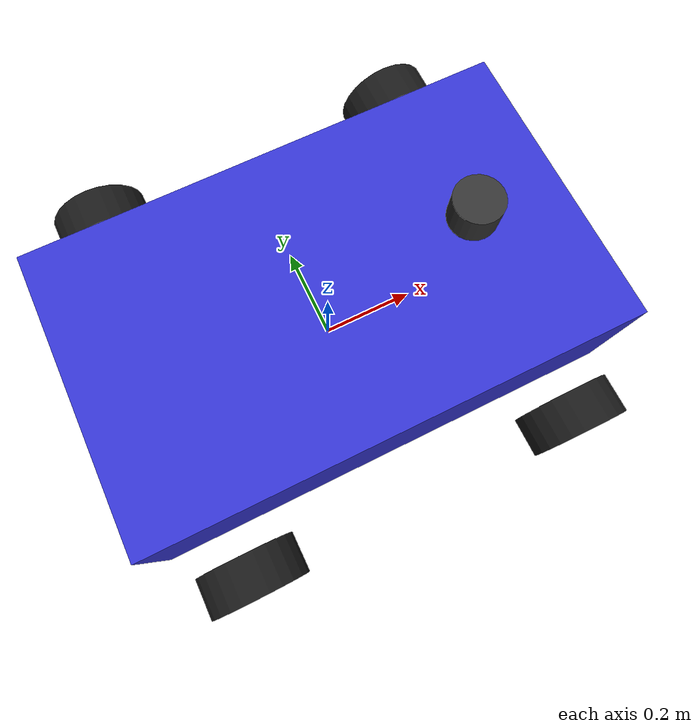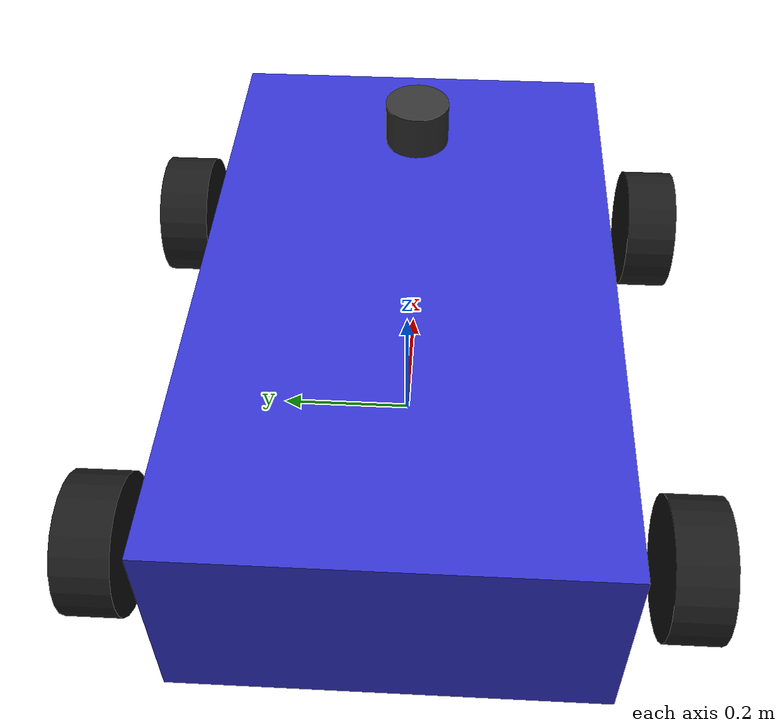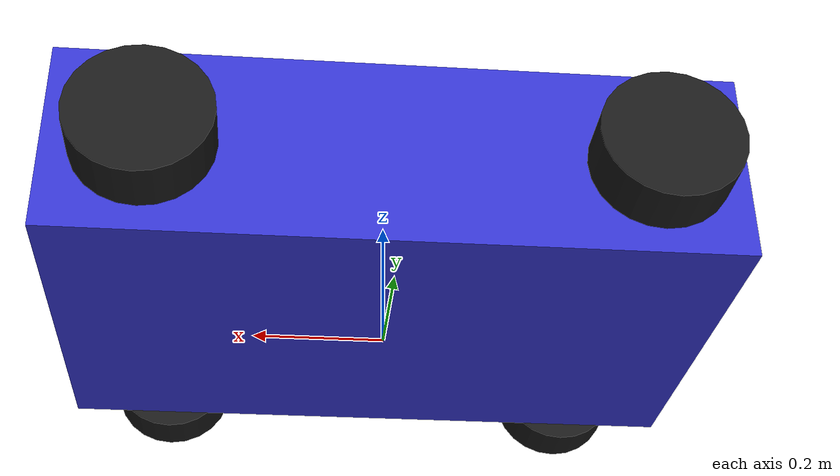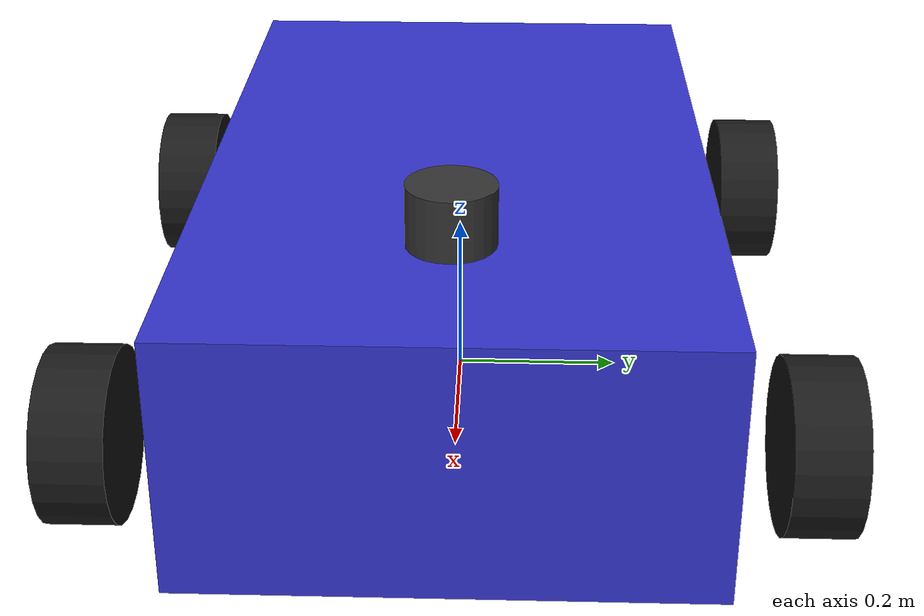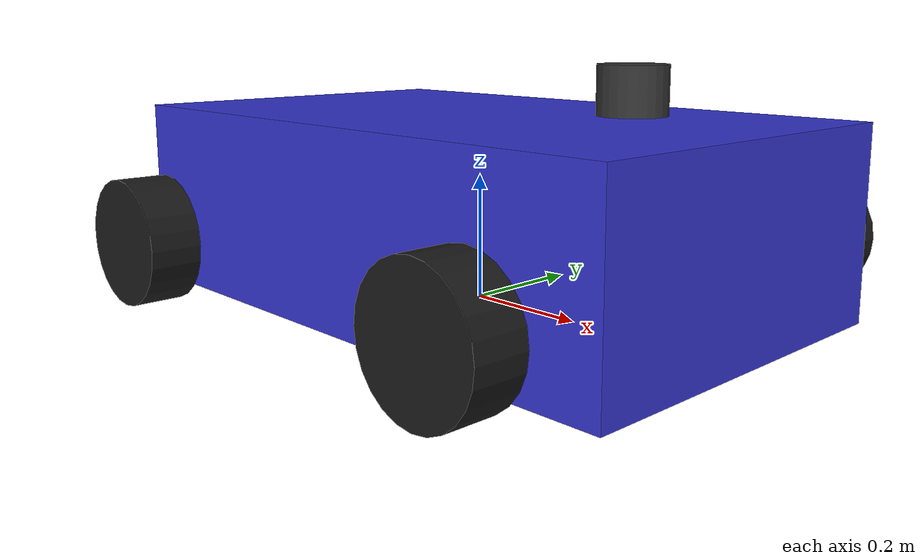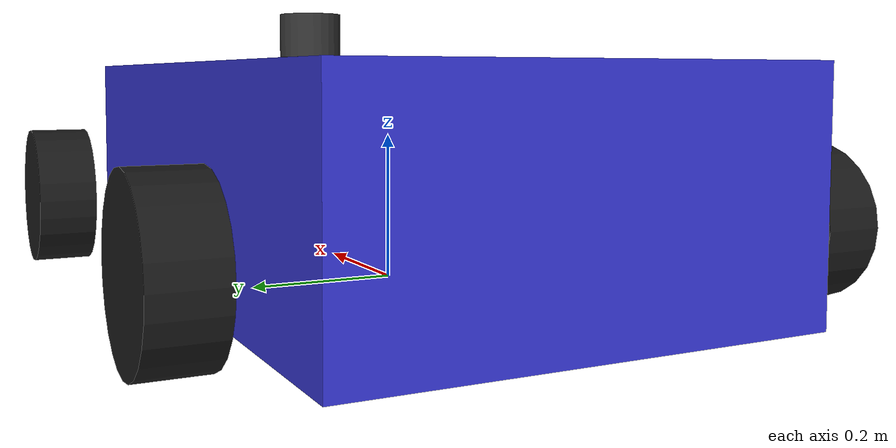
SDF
<?xml version="1.0" ?>
<sdf version="1.6">
  <model name="inspection_robot">

    <!-- Base link (chassis) -->
    <link name="base_link">
      <pose>0 0 0.15 0 0 0</pose>
      <inertial>
        <mass>20.0</mass>
        <inertia>
          <ixx>0.4</ixx>
          <ixy>0</ixy>
          <ixz>0</ixz>
          <iyy>1.0</iyy>
          <iyz>0</iyz>
          <izz>1.2</izz>
        </inertia>
      </inertial>

      <!-- Chassis visual -->
      <visual name="chassis_visual">
        <geometry>
          <box>
            <size>1.0 0.6 0.3</size>
          </box>
        </geometry>
        <material>
          <ambient>0.2 0.2 0.8 1.0</ambient>
          <diffuse>0.2 0.2 0.8 1.0</diffuse>
          <specular>0.5 0.5 0.5 1.0</specular>
        </material>
      </visual>

      <!-- Chassis collision -->
      <collision name="chassis_collision">
        <geometry>
          <box>
            <size>1.0 0.6 0.3</size>
          </box>
        </geometry>
      </collision>

      <!-- GPS Sensor -->
      <sensor name="gps_sensor" type="navsat">
        <pose>0 0 0.2 0 0 0</pose>
        <always_on>true</always_on>
        <update_rate>10</update_rate>
        <topic>/mavros/global_position/global</topic>
        <navsat>
          <position_sensing>
            <horizontal>
              <noise type="gaussian">
                <mean>0.0</mean>
                <stddev>2e-4</stddev>
              </noise>
            </horizontal>
            <vertical>
              <noise type="gaussian">
                <mean>0.0</mean>
                <stddev>2e-4</stddev>
              </noise>
            </vertical>
          </position_sensing>
          <velocity_sensing>
            <horizontal>
              <noise type="gaussian">
                <mean>0.0</mean>
                <stddev>0.1</stddev>
              </noise>
            </horizontal>
            <vertical>
              <noise type="gaussian">
                <mean>0.0</mean>
                <stddev>0.1</stddev>
              </noise>
            </vertical>
          </velocity_sensing>
        </navsat>
      </sensor>

      <!-- IMU Sensor (for heading/orientation) -->
      <sensor name="imu_sensor" type="imu">
        <pose>0 0 0.2 0 0 0</pose>
        <always_on>true</always_on>
        <update_rate>100</update_rate>
        <topic>/imu/data</topic>
        <imu>
          <angular_velocity>
            <x>
              <noise type="gaussian">
                <mean>0.0</mean>
                <stddev>2e-4</stddev>
              </noise>
            </x>
            <y>
              <noise type="gaussian">
                <mean>0.0</mean>
                <stddev>2e-4</stddev>
              </noise>
            </y>
            <z>
              <noise type="gaussian">
                <mean>0.0</mean>
                <stddev>2e-4</stddev>
              </noise>
            </z>
          </angular_velocity>
          <linear_acceleration>
            <x>
              <noise type="gaussian">
                <mean>0.0</mean>
                <stddev>1.7e-2</stddev>
              </noise>
            </x>
            <y>
              <noise type="gaussian">
                <mean>0.0</mean>
                <stddev>1.7e-2</stddev>
              </noise>
            </y>
            <z>
              <noise type="gaussian">
                <mean>0.0</mean>
                <stddev>1.7e-2</stddev>
              </noise>
            </z>
          </linear_acceleration>
        </imu>
      </sensor>
    </link>

    <!-- LiDAR Link -->
    <link name="lidar_link">
      <pose>0.3 0 0.35 0 0 0</pose>
      <inertial>
        <mass>0.5</mass>
        <inertia>
          <ixx>0.001</ixx>
          <ixy>0</ixy>
          <ixz>0</ixz>
          <iyy>0.001</iyy>
          <iyz>0</iyz>
          <izz>0.001</izz>
        </inertia>
      </inertial>

      <!-- LiDAR Visual -->
      <visual name="lidar_visual">
        <geometry>
          <cylinder>
            <radius>0.05</radius>
            <length>0.07</length>
          </cylinder>
        </geometry>
        <material>
          <ambient>0.1 0.1 0.1 1.0</ambient>
          <diffuse>0.2 0.2 0.2 1.0</diffuse>
        </material>
      </visual>

      <!-- LiDAR Sensor - 3D point cloud -->
      <sensor name="velodyne" type="gpu_lidar">
        <pose>0 0 0.035 0 0 0</pose>
        <topic>lidar</topic>
        <always_on>1</always_on>
        <update_rate>10</update_rate>
        <visualize>true</visualize>
        <lidar>
          <scan>
            <horizontal>
              <samples>640</samples>
              <resolution>1</resolution>
              <min_angle>-3.14159</min_angle>
              <max_angle>3.14159</max_angle>
            </horizontal>
            <vertical>
              <samples>16</samples>
              <resolution>1</resolution>
              <min_angle>-0.261799</min_angle>
              <max_angle>0.261799</max_angle>
            </vertical>
          </scan>
          <range>
            <min>0.1</min>
            <max>30.0</max>
            <resolution>0.01</resolution>
          </range>
          <noise>
            <type>gaussian</type>
            <mean>0.0</mean>
            <stddev>0.01</stddev>
          </noise>
        </lidar>
        <ignition_frame_id>velodyne</ignition_frame_id>
      </sensor>
    </link>

    <!-- LiDAR Joint -->
    <joint name="lidar_joint" type="fixed">
      <parent>base_link</parent>
      <child>lidar_link</child>
    </joint>

    <!-- Front Left Wheel -->
    <link name="front_left_wheel">
      <pose>0.35 0.4 0.1 -1.5707 0 0</pose>
      <inertial>
        <mass>2.0</mass>
        <inertia>
          <ixx>0.01</ixx>
          <ixy>0</ixy>
          <ixz>0</ixz>
          <iyy>0.01</iyy>
          <iyz>0</iyz>
          <izz>0.01</izz>
        </inertia>
      </inertial>
      <visual name="visual">
        <geometry>
          <cylinder>
            <radius>0.1</radius>
            <length>0.08</length>
          </cylinder>
        </geometry>
        <material>
          <ambient>0.1 0.1 0.1 1.0</ambient>
          <diffuse>0.1 0.1 0.1 1.0</diffuse>
        </material>
      </visual>
      <collision name="collision">
        <geometry>
          <cylinder>
            <radius>0.1</radius>
            <length>0.08</length>
          </cylinder>
        </geometry>
        <surface>
          <friction>
            <ode>
              <mu>1.0</mu>
              <mu2>1.0</mu2>
            </ode>
          </friction>
        </surface>
      </collision>
    </link>

    <!-- Front Right Wheel -->
    <link name="front_right_wheel">
      <pose>0.35 -0.4 0.1 -1.5707 0 0</pose>
      <inertial>
        <mass>2.0</mass>
        <inertia>
          <ixx>0.01</ixx>
          <ixy>0</ixy>
          <ixz>0</ixz>
          <iyy>0.01</iyy>
          <iyz>0</iyz>
          <izz>0.01</izz>
        </inertia>
      </inertial>
      <visual name="visual">
        <geometry>
          <cylinder>
            <radius>0.1</radius>
            <length>0.08</length>
          </cylinder>
        </geometry>
        <material>
          <ambient>0.1 0.1 0.1 1.0</ambient>
          <diffuse>0.1 0.1 0.1 1.0</diffuse>
        </material>
      </visual>
      <collision name="collision">
        <geometry>
          <cylinder>
            <radius>0.1</radius>
            <length>0.08</length>
          </cylinder>
        </geometry>
        <surface>
          <friction>
            <ode>
              <mu>1.0</mu>
              <mu2>1.0</mu2>
            </ode>
          </friction>
        </surface>
      </collision>
    </link>

    <!-- Rear Left Wheel -->
    <link name="rear_left_wheel">
      <pose>-0.35 0.4 0.1 -1.5707 0 0</pose>
      <inertial>
        <mass>2.0</mass>
        <inertia>
          <ixx>0.01</ixx>
          <ixy>0</ixy>
          <ixz>0</ixz>
          <iyy>0.01</iyy>
          <iyz>0</iyz>
          <izz>0.01</izz>
        </inertia>
      </inertial>
      <visual name="visual">
        <geometry>
          <cylinder>
            <radius>0.1</radius>
            <length>0.08</length>
          </cylinder>
        </geometry>
        <material>
          <ambient>0.1 0.1 0.1 1.0</ambient>
          <diffuse>0.1 0.1 0.1 1.0</diffuse>
        </material>
      </visual>
      <collision name="collision">
        <geometry>
          <cylinder>
            <radius>0.1</radius>
            <length>0.08</length>
          </cylinder>
        </geometry>
        <surface>
          <friction>
            <ode>
              <mu>1.0</mu>
              <mu2>1.0</mu2>
            </ode>
          </friction>
        </surface>
      </collision>
    </link>

    <!-- Rear Right Wheel -->
    <link name="rear_right_wheel">
      <pose>-0.35 -0.4 0.1 -1.5707 0 0</pose>
      <inertial>
        <mass>2.0</mass>
        <inertia>
          <ixx>0.01</ixx>
          <ixy>0</ixy>
          <ixz>0</ixz>
          <iyy>0.01</iyy>
          <iyz>0</iyz>
          <izz>0.01</izz>
        </inertia>
      </inertial>
      <visual name="visual">
        <geometry>
          <cylinder>
            <radius>0.1</radius>
            <length>0.08</length>
          </cylinder>
        </geometry>
        <material>
          <ambient>0.1 0.1 0.1 1.0</ambient>
          <diffuse>0.1 0.1 0.1 1.0</diffuse>
        </material>
      </visual>
      <collision name="collision">
        <geometry>
          <cylinder>
            <radius>0.1</radius>
            <length>0.08</length>
          </cylinder>
        </geometry>
        <surface>
          <friction>
            <ode>
              <mu>1.0</mu>
              <mu2>1.0</mu2>
            </ode>
          </friction>
        </surface>
      </collision>
    </link>

    <!-- Wheel Joints -->
    <joint name="front_left_wheel_joint" type="revolute">
      <parent>base_link</parent>
      <child>front_left_wheel</child>
      <axis>
        <xyz>0 0 1</xyz>
        <limit>
          <lower>-1e16</lower>
          <upper>1e16</upper>
        </limit>
      </axis>
    </joint>

    <joint name="front_right_wheel_joint" type="revolute">
      <parent>base_link</parent>
      <child>front_right_wheel</child>
      <axis>
        <xyz>0 0 1</xyz>
        <limit>
          <lower>-1e16</lower>
          <upper>1e16</upper>
        </limit>
      </axis>
    </joint>

    <joint name="rear_left_wheel_joint" type="revolute">
      <parent>base_link</parent>
      <child>rear_left_wheel</child>
      <axis>
        <xyz>0 0 1</xyz>
        <limit>
          <lower>-1e16</lower>
          <upper>1e16</upper>
        </limit>
      </axis>
    </joint>

    <joint name="rear_right_wheel_joint" type="revolute">
      <parent>base_link</parent>
      <child>rear_right_wheel</child>
      <axis>
        <xyz>0 0 1</xyz>
        <limit>
          <lower>-1e16</lower>
          <upper>1e16</upper>
        </limit>
      </axis>
    </joint>

    <!-- Differential drive plugin (Fortress naming) -->
    <plugin filename="ignition-gazebo-diff-drive-system" name="ignition::gazebo::systems::DiffDrive">
      <left_joint>front_left_wheel_joint</left_joint>
      <left_joint>rear_left_wheel_joint</left_joint>
      <right_joint>front_right_wheel_joint</right_joint>
      <right_joint>rear_right_wheel_joint</right_joint>
      <wheel_separation>0.8</wheel_separation>
      <wheel_radius>0.1</wheel_radius>
      <max_linear_acceleration>5.0</max_linear_acceleration>
      <min_linear_acceleration>-5.0</min_linear_acceleration>
      <max_angular_acceleration>3.0</max_angular_acceleration>
      <min_angular_acceleration>-3.0</min_angular_acceleration>
      <max_linear_velocity>10.0</max_linear_velocity>
      <min_linear_velocity>-10.0</min_linear_velocity>
      <max_angular_velocity>2.0</max_angular_velocity>
      <min_angular_velocity>-2.0</min_angular_velocity>
      <topic>/cmd_vel</topic>
      <odom_topic>/odom</odom_topic>
      <frame_id>odom</frame_id>
      <child_frame_id>base_link</child_frame_id>
    </plugin>

  </model>
</sdf>
